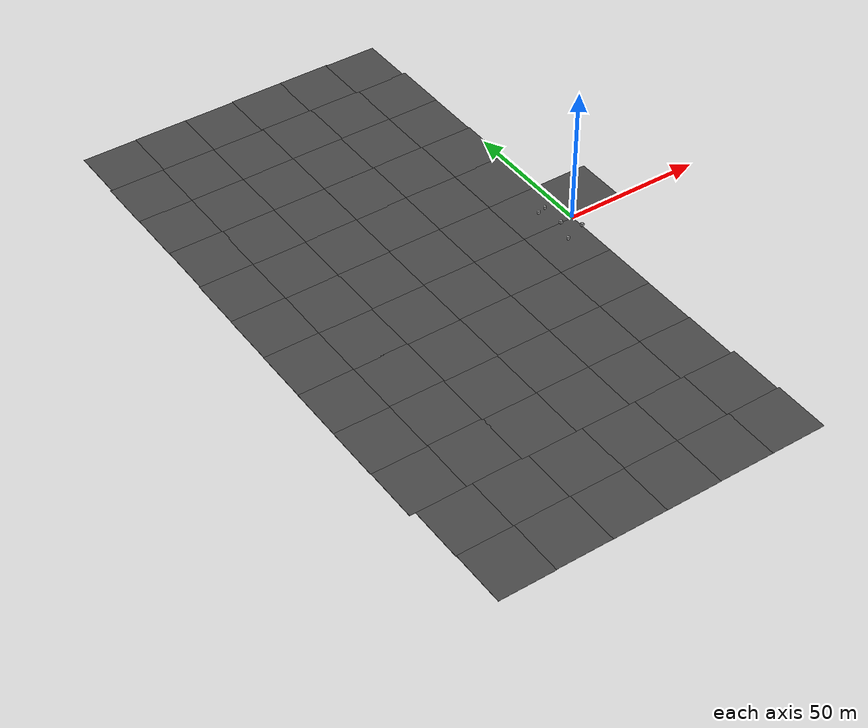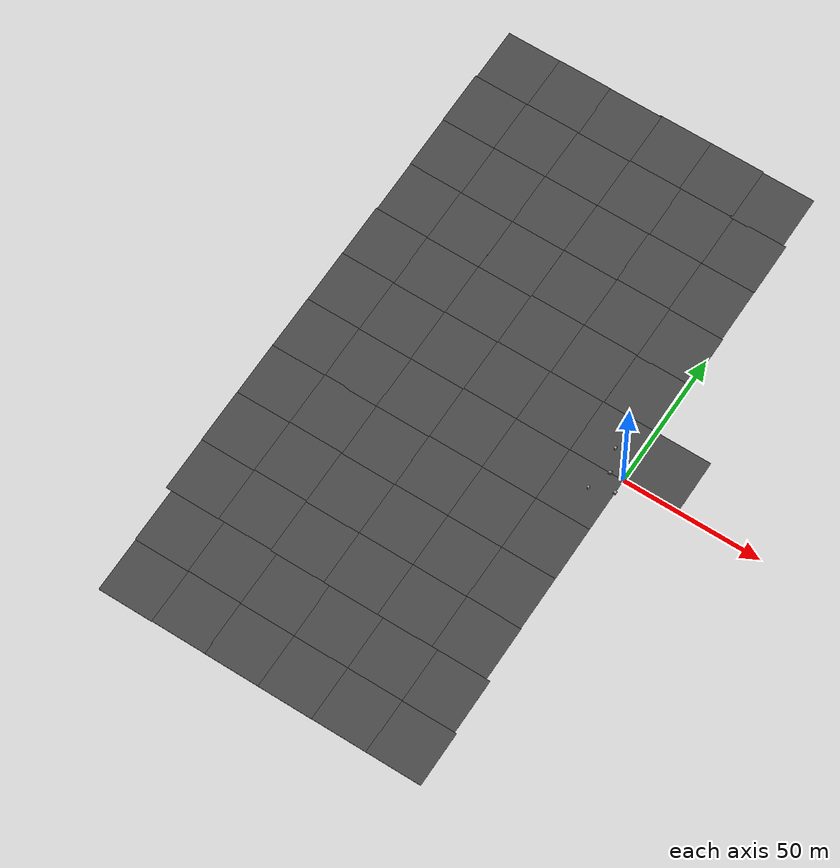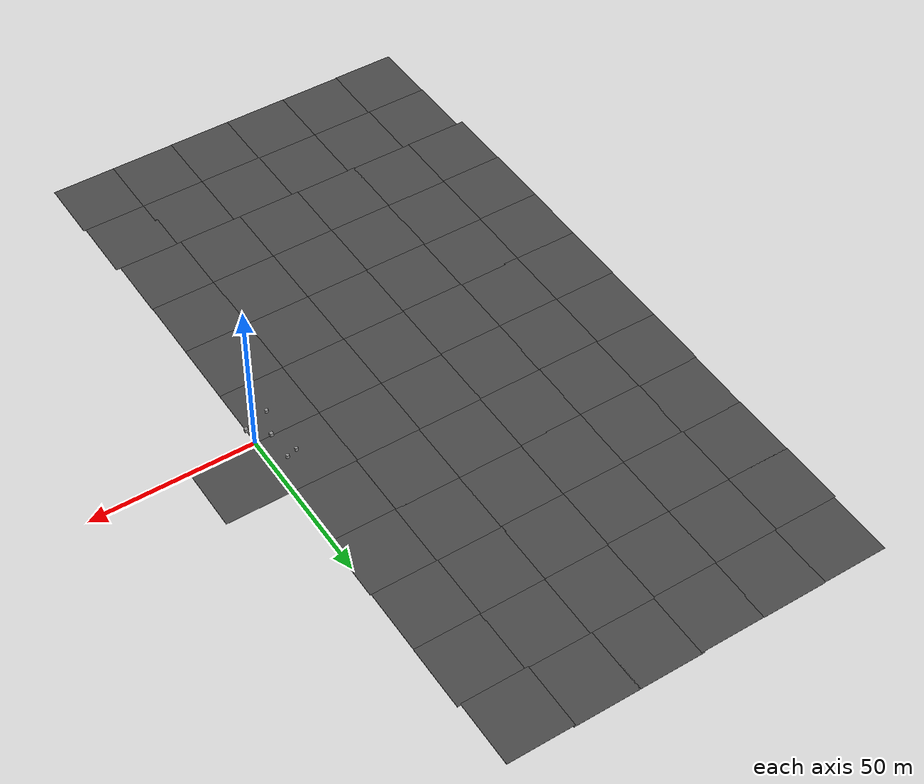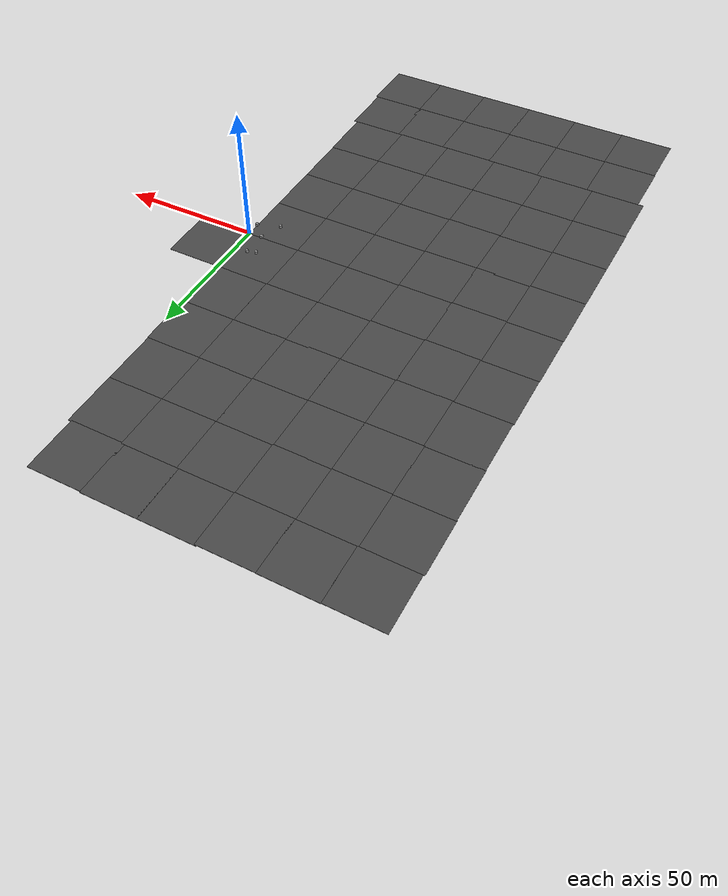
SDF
<sdf version="1.6">
 <world name="default">
  <model name="asphalt_plane">
   <static>1</static>
   <link name="link">
    <collision name="collision"><geometry><box><size>20 20 0.1</size></box></geometry></collision>
    <visual name="visual">
     <cast_shadows>0</cast_shadows>
     <geometry><box><size>20 20 0.1</size></box></geometry>
     <material>
      <script>
       <uri>model://asphalt_plane/materials/scripts</uri>
       <uri>model://asphalt_plane/materials/textures</uri>
       <name>vrc/asphalt</name>
      </script>
     </material>
    </visual>
    <velocity_decay><linear>0</linear><angular>0</angular></velocity_decay>
   </link>
   <pose>10 10 0 0 -0 0</pose>
  </model>
  <model name="asphalt_plane_1">
   <static>1</static>
   <link name="link">
    <collision name="collision"><geometry><box><size>20 20 0.1</size></box></geometry></collision>
    <visual name="visual">
     <cast_shadows>0</cast_shadows>
     <geometry><box><size>20 20 0.1</size></box></geometry>
     <material>
      <script>
       <uri>model://asphalt_plane/materials/scripts</uri>
       <uri>model://asphalt_plane/materials/textures</uri>
       <name>vrc/asphalt</name>
      </script>
     </material>
    </visual>
    <velocity_decay><linear>0</linear><angular>0</angular></velocity_decay>
   </link>
   <pose>-10 10 0 0 -0 0</pose>
  </model>
  <model name="asphalt_plane_2">
   <static>1</static>
   <link name="link">
    <collision name="collision"><geometry><box><size>20 20 0.1</size></box></geometry></collision>
    <visual name="visual">
     <cast_shadows>0</cast_shadows>
     <geometry><box><size>20 20 0.1</size></box></geometry>
     <material>
      <script>
       <uri>model://asphalt_plane/materials/scripts</uri>
       <uri>model://asphalt_plane/materials/textures</uri>
       <name>vrc/asphalt</name>
      </script>
     </material>
    </visual>
    <velocity_decay><linear>0</linear><angular>0</angular></velocity_decay>
   </link>
   <pose>-10 -10 0 0 -0 0</pose>
  </model>
  <model name="asphalt_plane_3">
   <static>1</static>
   <link name="link">
    <collision name="collision"><geometry><box><size>20 20 0.1</size></box></geometry></collision>
    <visual name="visual">
     <cast_shadows>0</cast_shadows>
     <geometry><box><size>20 20 0.1</size></box></geometry>
     <material>
      <script>
       <uri>model://asphalt_plane/materials/scripts</uri>
       <uri>model://asphalt_plane/materials/textures</uri>
       <name>vrc/asphalt</name>
      </script>
     </material>
    </visual>
    <velocity_decay><linear>0</linear><angular>0</angular></velocity_decay>
   </link>
   <pose>-10 -30 0 0 -0 0</pose>
  </model>
  <model name="asphalt_plane_8">
   <static>1</static>
   <link name="link">
    <collision name="collision"><geometry><box><size>20 20 0.1</size></box></geometry></collision>
    <visual name="visual">
     <cast_shadows>0</cast_shadows>
     <geometry><box><size>20 20 0.1</size></box></geometry>
     <material>
      <script>
       <uri>model://asphalt_plane/materials/scripts</uri>
       <uri>model://asphalt_plane/materials/textures</uri>
       <name>vrc/asphalt</name>
      </script>
     </material>
    </visual>
   </link>
   <pose>-10.0262 -49.9694 0 0 -0 0</pose>
  </model>
  <model name="asphalt_plane_28">
   <static>1</static>
   <link name="link">
    <collision name="collision"><geometry><box><size>20 20 0.1</size></box></geometry></collision>
    <visual name="visual">
     <cast_shadows>0</cast_shadows>
     <geometry><box><size>20 20 0.1</size></box></geometry>
     <material>
      <script>
       <uri>model://asphalt_plane/materials/scripts</uri>
       <uri>model://asphalt_plane/materials/textures</uri>
       <name>vrc/asphalt</name>
      </script>
     </material>
    </visual>
   </link>
   <pose>-9.65035 29.8845 0 0 -0 0</pose>
  </model>
  <model name="asphalt_plane_29">
   <static>1</static>
   <link name="link">
    <collision name="collision"><geometry><box><size>20 20 0.1</size></box></geometry></collision>
    <visual name="visual">
     <cast_shadows>0</cast_shadows>
     <geometry><box><size>20 20 0.1</size></box></geometry>
     <material>
      <script>
       <uri>model://asphalt_plane/materials/scripts</uri>
       <uri>model://asphalt_plane/materials/textures</uri>
       <name>vrc/asphalt</name>
      </script>
     </material>
    </visual>
   </link>
   <pose>-29.6635 29.8636 0 0 -0 0</pose>
  </model>
  <model name="asphalt_plane_30">
   <static>1</static>
   <link name="link">
    <collision name="collision"><geometry><box><size>20 20 0.1</size></box></geometry></collision>
    <visual name="visual">
     <cast_shadows>0</cast_shadows>
     <geometry><box><size>20 20 0.1</size></box></geometry>
     <material>
      <script>
       <uri>model://asphalt_plane/materials/scripts</uri>
       <uri>model://asphalt_plane/materials/textures</uri>
       <name>vrc/asphalt</name>
      </script>
     </material>
    </visual>
   </link>
   <pose>-29.8719 9.89328 0 0 -0 0</pose>
  </model>
  <model name="asphalt_plane_31">
   <static>1</static>
   <link name="link">
    <collision name="collision"><geometry><box><size>20 20 0.1</size></box></geometry></collision>
    <visual name="visual">
     <cast_shadows>0</cast_shadows>
     <geometry><box><size>20 20 0.1</size></box></geometry>
     <material>
      <script>
       <uri>model://asphalt_plane/materials/scripts</uri>
       <uri>model://asphalt_plane/materials/textures</uri>
       <name>vrc/asphalt</name>
      </script>
     </material>
    </visual>
   </link>
   <pose>-29.9029 -10.0926 0 0 -0 0</pose>
  </model>
  <model name="asphalt_plane_32">
   <static>1</static>
   <link name="link">
    <collision name="collision"><geometry><box><size>20 20 0.1</size></box></geometry></collision>
    <visual name="visual">
     <cast_shadows>0</cast_shadows>
     <geometry><box><size>20 20 0.1</size></box></geometry>
     <material>
      <script>
       <uri>model://asphalt_plane/materials/scripts</uri>
       <uri>model://asphalt_plane/materials/textures</uri>
       <name>vrc/asphalt</name>
      </script>
     </material>
    </visual>
   </link>
   <pose>-29.8516 -30.0257 0 0 -0 0</pose>
  </model>
  <model name="asphalt_plane_33">
   <static>1</static>
   <link name="link">
    <collision name="collision"><geometry><box><size>20 20 0.1</size></box></geometry></collision>
    <visual name="visual">
     <cast_shadows>0</cast_shadows>
     <geometry><box><size>20 20 0.1</size></box></geometry>
     <material>
      <script>
       <uri>model://asphalt_plane/materials/scripts</uri>
       <uri>model://asphalt_plane/materials/textures</uri>
       <name>vrc/asphalt</name>
      </script>
     </material>
    </visual>
   </link>
   <pose>-29.8339 -50.017 0 0 -0 0</pose>
  </model>
  <model name="asphalt_plane_34">
   <static>1</static>
   <link name="link">
    <collision name="collision"><geometry><box><size>20 20 0.1</size></box></geometry></collision>
    <visual name="visual">
     <cast_shadows>0</cast_shadows>
     <geometry><box><size>20 20 0.1</size></box></geometry>
     <material>
      <script>
       <uri>model://asphalt_plane/materials/scripts</uri>
       <uri>model://asphalt_plane/materials/textures</uri>
       <name>vrc/asphalt</name>
      </script>
     </material>
    </visual>
   </link>
   <pose>-49.8045 -50.0177 0 0 -0 0</pose>
  </model>
  <model name="asphalt_plane_35">
   <static>1</static>
   <link name="link">
    <collision name="collision"><geometry><box><size>20 20 0.1</size></box></geometry></collision>
    <visual name="visual">
     <cast_shadows>0</cast_shadows>
     <geometry><box><size>20 20 0.1</size></box></geometry>
     <material>
      <script>
       <uri>model://asphalt_plane/materials/scripts</uri>
       <uri>model://asphalt_plane/materials/textures</uri>
       <name>vrc/asphalt</name>
      </script>
     </material>
    </visual>
   </link>
   <pose>-49.7739 -30.0396 0 0 -0 0</pose>
  </model>
  <model name="asphalt_plane_36">
   <static>1</static>
   <link name="link">
    <collision name="collision"><geometry><box><size>20 20 0.1</size></box></geometry></collision>
    <visual name="visual">
     <cast_shadows>0</cast_shadows>
     <geometry><box><size>20 20 0.1</size></box></geometry>
     <material>
      <script>
       <uri>model://asphalt_plane/materials/scripts</uri>
       <uri>model://asphalt_plane/materials/textures</uri>
       <name>vrc/asphalt</name>
      </script>
     </material>
    </visual>
   </link>
   <pose>-49.7315 -10.0641 0 0 -0 0</pose>
  </model>
  <model name="asphalt_plane_37">
   <static>1</static>
   <link name="link">
    <collision name="collision"><geometry><box><size>20 20 0.1</size></box></geometry></collision>
    <visual name="visual">
     <cast_shadows>0</cast_shadows>
     <geometry><box><size>20 20 0.1</size></box></geometry>
     <material>
      <script>
       <uri>model://asphalt_plane/materials/scripts</uri>
       <uri>model://asphalt_plane/materials/textures</uri>
       <name>vrc/asphalt</name>
      </script>
     </material>
    </visual>
   </link>
   <pose>-49.8526 9.81961 0 0 -0 0</pose>
  </model>
  <model name="asphalt_plane_38">
   <static>1</static>
   <link name="link">
    <collision name="collision"><geometry><box><size>20 20 0.1</size></box></geometry></collision>
    <visual name="visual">
     <cast_shadows>0</cast_shadows>
     <geometry><box><size>20 20 0.1</size></box></geometry>
     <material>
      <script>
       <uri>model://asphalt_plane/materials/scripts</uri>
       <uri>model://asphalt_plane/materials/textures</uri>
       <name>vrc/asphalt</name>
      </script>
     </material>
    </visual>
   </link>
   <pose>-49.5858 29.8157 0 0 -0 0</pose>
  </model>
  <model name="asphalt_plane_39">
   <static>1</static>
   <link name="link">
    <collision name="collision"><geometry><box><size>20 20 0.1</size></box></geometry></collision>
    <visual name="visual">
     <cast_shadows>0</cast_shadows>
     <geometry><box><size>20 20 0.1</size></box></geometry>
     <material>
      <script>
       <uri>model://asphalt_plane/materials/scripts</uri>
       <uri>model://asphalt_plane/materials/textures</uri>
       <name>vrc/asphalt</name>
      </script>
     </material>
    </visual>
   </link>
   <pose>-69.7888 -50.1931 0 0 -0 0</pose>
  </model>
  <model name="asphalt_plane_40">
   <static>1</static>
   <link name="link">
    <collision name="collision"><geometry><box><size>20 20 0.1</size></box></geometry></collision>
    <visual name="visual">
     <cast_shadows>0</cast_shadows>
     <geometry><box><size>20 20 0.1</size></box></geometry>
     <material>
      <script>
       <uri>model://asphalt_plane/materials/scripts</uri>
       <uri>model://asphalt_plane/materials/textures</uri>
       <name>vrc/asphalt</name>
      </script>
     </material>
    </visual>
   </link>
   <pose>-69.5889 -30.305 0 0 -0 0</pose>
  </model>
  <model name="asphalt_plane_41">
   <static>1</static>
   <link name="link">
    <collision name="collision"><geometry><box><size>20 20 0.1</size></box></geometry></collision>
    <visual name="visual">
     <cast_shadows>0</cast_shadows>
     <geometry><box><size>20 20 0.1</size></box></geometry>
     <material>
      <script>
       <uri>model://asphalt_plane/materials/scripts</uri>
       <uri>model://asphalt_plane/materials/textures</uri>
       <name>vrc/asphalt</name>
      </script>
     </material>
    </visual>
   </link>
   <pose>-69.6926 -10.3768 0 0 -0 0</pose>
  </model>
  <model name="asphalt_plane_42">
   <static>1</static>
   <link name="link">
    <collision name="collision"><geometry><box><size>20 20 0.1</size></box></geometry></collision>
    <visual name="visual">
     <cast_shadows>0</cast_shadows>
     <geometry><box><size>20 20 0.1</size></box></geometry>
     <material>
      <script>
       <uri>model://asphalt_plane/materials/scripts</uri>
       <uri>model://asphalt_plane/materials/textures</uri>
       <name>vrc/asphalt</name>
      </script>
     </material>
    </visual>
   </link>
   <pose>-69.7195 9.5907 0 0 -0 0</pose>
  </model>
  <model name="asphalt_plane_43">
   <static>1</static>
   <link name="link">
    <collision name="collision"><geometry><box><size>20 20 0.1</size></box></geometry></collision>
    <visual name="visual">
     <cast_shadows>0</cast_shadows>
     <geometry><box><size>20 20 0.1</size></box></geometry>
     <material>
      <script>
       <uri>model://asphalt_plane/materials/scripts</uri>
       <uri>model://asphalt_plane/materials/textures</uri>
       <name>vrc/asphalt</name>
      </script>
     </material>
    </visual>
   </link>
   <pose>-69.5806 29.5148 0 0 -0 0</pose>
  </model>
  <model name="asphalt_plane_44">
   <static>1</static>
   <link name="link">
    <collision name="collision"><geometry><box><size>20 20 0.1</size></box></geometry></collision>
    <visual name="visual">
     <cast_shadows>0</cast_shadows>
     <geometry><box><size>20 20 0.1</size></box></geometry>
     <material>
      <script>
       <uri>model://asphalt_plane/materials/scripts</uri>
       <uri>model://asphalt_plane/materials/textures</uri>
       <name>vrc/asphalt</name>
      </script>
     </material>
    </visual>
   </link>
   <pose>-69.4546 49.2496 0 0 -0 0</pose>
  </model>
  <model name="asphalt_plane_45">
   <static>1</static>
   <link name="link">
    <collision name="collision"><geometry><box><size>20 20 0.1</size></box></geometry></collision>
    <visual name="visual">
     <cast_shadows>0</cast_shadows>
     <geometry><box><size>20 20 0.1</size></box></geometry>
     <material>
      <script>
       <uri>model://asphalt_plane/materials/scripts</uri>
       <uri>model://asphalt_plane/materials/textures</uri>
       <name>vrc/asphalt</name>
      </script>
     </material>
    </visual>
   </link>
   <pose>-49.4459 49.3852 0 0 -0 0</pose>
  </model>
  <model name="asphalt_plane_46">
   <static>1</static>
   <link name="link">
    <collision name="collision"><geometry><box><size>20 20 0.1</size></box></geometry></collision>
    <visual name="visual">
     <cast_shadows>0</cast_shadows>
     <geometry><box><size>20 20 0.1</size></box></geometry>
     <material>
      <script>
       <uri>model://asphalt_plane/materials/scripts</uri>
       <uri>model://asphalt_plane/materials/textures</uri>
       <name>vrc/asphalt</name>
      </script>
     </material>
    </visual>
   </link>
   <pose>-29.5435 49.6651 0 0 -0 0</pose>
  </model>
  <model name="asphalt_plane_47">
   <static>1</static>
   <link name="link">
    <collision name="collision"><geometry><box><size>20 20 0.1</size></box></geometry></collision>
    <visual name="visual">
     <cast_shadows>0</cast_shadows>
     <geometry><box><size>20 20 0.1</size></box></geometry>
     <material>
      <script>
       <uri>model://asphalt_plane/materials/scripts</uri>
       <uri>model://asphalt_plane/materials/textures</uri>
       <name>vrc/asphalt</name>
      </script>
     </material>
    </visual>
   </link>
   <pose>-9.54993 49.5955 0 0 -0 0</pose>
  </model>
  <model name="asphalt_plane_58">
   <static>1</static>
   <link name="link">
    <collision name="collision"><geometry><box><size>20 20 0.1</size></box></geometry></collision>
    <visual name="visual">
     <cast_shadows>0</cast_shadows>
     <geometry><box><size>20 20 0.1</size></box></geometry>
     <material>
      <script>
       <uri>model://asphalt_plane/materials/scripts</uri>
       <uri>model://asphalt_plane/materials/textures</uri>
       <name>vrc/asphalt</name>
      </script>
     </material>
    </visual>
   </link>
   <pose>-9.86457 69.4864 0 0 -0 0</pose>
  </model>
  <model name="asphalt_plane_59">
   <static>1</static>
   <link name="link">
    <collision name="collision"><geometry><box><size>20 20 0.1</size></box></geometry></collision>
    <visual name="visual">
     <cast_shadows>0</cast_shadows>
     <geometry><box><size>20 20 0.1</size></box></geometry>
     <material>
      <script>
       <uri>model://asphalt_plane/materials/scripts</uri>
       <uri>model://asphalt_plane/materials/textures</uri>
       <name>vrc/asphalt</name>
      </script>
     </material>
    </visual>
   </link>
   <pose>-29.8012 69.5131 0 0 -0 0</pose>
  </model>
  <model name="asphalt_plane_60">
   <static>1</static>
   <link name="link">
    <collision name="collision"><geometry><box><size>20 20 0.1</size></box></geometry></collision>
    <visual name="visual">
     <cast_shadows>0</cast_shadows>
     <geometry><box><size>20 20 0.1</size></box></geometry>
     <material>
      <script>
       <uri>model://asphalt_plane/materials/scripts</uri>
       <uri>model://asphalt_plane/materials/textures</uri>
       <name>vrc/asphalt</name>
      </script>
     </material>
    </visual>
   </link>
   <pose>-49.5215 69.3867 0 0 -0 0</pose>
  </model>
  <model name="asphalt_plane_61">
   <static>1</static>
   <link name="link">
    <collision name="collision"><geometry><box><size>20 20 0.1</size></box></geometry></collision>
    <visual name="visual">
     <cast_shadows>0</cast_shadows>
     <geometry><box><size>20 20 0.1</size></box></geometry>
     <material>
      <script>
       <uri>model://asphalt_plane/materials/scripts</uri>
       <uri>model://asphalt_plane/materials/textures</uri>
       <name>vrc/asphalt</name>
      </script>
     </material>
    </visual>
   </link>
   <pose>-69.39 69.2244 0 0 -0 0</pose>
  </model>
  <model name="asphalt_plane_67">
   <static>1</static>
   <link name="link">
    <collision name="collision"><geometry><box><size>20 20 0.1</size></box></geometry></collision>
    <visual name="visual">
     <cast_shadows>0</cast_shadows>
     <geometry><box><size>20 20 0.1</size></box></geometry>
     <material>
      <script>
       <uri>model://asphalt_plane/materials/scripts</uri>
       <uri>model://asphalt_plane/materials/textures</uri>
       <name>vrc/asphalt</name>
      </script>
     </material>
    </visual>
   </link>
   <pose>-9.8692 -69.8203 0 0 -0 0</pose>
  </model>
  <model name="asphalt_plane_68">
   <static>1</static>
   <link name="link">
    <collision name="collision"><geometry><box><size>20 20 0.1</size></box></geometry></collision>
    <visual name="visual">
     <cast_shadows>0</cast_shadows>
     <geometry><box><size>20 20 0.1</size></box></geometry>
     <material>
      <script>
       <uri>model://asphalt_plane/materials/scripts</uri>
       <uri>model://asphalt_plane/materials/textures</uri>
       <name>vrc/asphalt</name>
      </script>
     </material>
    </visual>
   </link>
   <pose>-29.8035 -69.9489 0 0 -0 0</pose>
  </model>
  <model name="asphalt_plane_69">
   <static>1</static>
   <link name="link">
    <collision name="collision"><geometry><box><size>20 20 0.1</size></box></geometry></collision>
    <visual name="visual">
     <cast_shadows>0</cast_shadows>
     <geometry><box><size>20 20 0.1</size></box></geometry>
     <material>
      <script>
       <uri>model://asphalt_plane/materials/scripts</uri>
       <uri>model://asphalt_plane/materials/textures</uri>
       <name>vrc/asphalt</name>
      </script>
     </material>
    </visual>
   </link>
   <pose>-49.75 -69.9837 0 0 -0 0</pose>
  </model>
  <model name="asphalt_plane_70">
   <static>1</static>
   <link name="link">
    <collision name="collision"><geometry><box><size>20 20 0.1</size></box></geometry></collision>
    <visual name="visual">
     <cast_shadows>0</cast_shadows>
     <geometry><box><size>20 20 0.1</size></box></geometry>
     <material>
      <script>
       <uri>model://asphalt_plane/materials/scripts</uri>
       <uri>model://asphalt_plane/materials/textures</uri>
       <name>vrc/asphalt</name>
      </script>
     </material>
    </visual>
   </link>
   <pose>-69.6983 -70.0528 0 0 -0 0</pose>
  </model>
  <model name="asphalt_plane_76">
   <static>1</static>
   <link name="link">
    <collision name="collision"><geometry><box><size>20 20 0.1</size></box></geometry></collision>
    <visual name="visual">
     <cast_shadows>0</cast_shadows>
     <geometry><box><size>20 20 0.1</size></box></geometry>
     <material>
      <script>
       <uri>model://asphalt_plane/materials/scripts</uri>
       <uri>model://asphalt_plane/materials/textures</uri>
       <name>vrc/asphalt</name>
      </script>
     </material>
    </visual>
   </link>
   <pose>-8.53391 -89.7003 0 0 -0 0</pose>
  </model>
  <model name="asphalt_plane_77">
   <static>1</static>
   <link name="link">
    <collision name="collision"><geometry><box><size>20 20 0.1</size></box></geometry></collision>
    <visual name="visual">
     <cast_shadows>0</cast_shadows>
     <geometry><box><size>20 20 0.1</size></box></geometry>
     <material>
      <script>
       <uri>model://asphalt_plane/materials/scripts</uri>
       <uri>model://asphalt_plane/materials/textures</uri>
       <name>vrc/asphalt</name>
      </script>
     </material>
    </visual>
   </link>
   <pose>-27.6998 -89.7486 0 0 -0 0</pose>
  </model>
  <model name="asphalt_plane_78">
   <static>1</static>
   <link name="link">
    <collision name="collision"><geometry><box><size>20 20 0.1</size></box></geometry></collision>
    <visual name="visual">
     <cast_shadows>0</cast_shadows>
     <geometry><box><size>20 20 0.1</size></box></geometry>
     <material>
      <script>
       <uri>model://asphalt_plane/materials/scripts</uri>
       <uri>model://asphalt_plane/materials/textures</uri>
       <name>vrc/asphalt</name>
      </script>
     </material>
    </visual>
   </link>
   <pose>-47.6509 -89.8741 0 0 -0 0</pose>
  </model>
  <model name="asphalt_plane_79">
   <static>1</static>
   <link name="link">
    <collision name="collision"><geometry><box><size>20 20 0.1</size></box></geometry></collision>
    <visual name="visual">
     <cast_shadows>0</cast_shadows>
     <geometry><box><size>20 20 0.1</size></box></geometry>
     <material>
      <script>
       <uri>model://asphalt_plane/materials/scripts</uri>
       <uri>model://asphalt_plane/materials/textures</uri>
       <name>vrc/asphalt</name>
      </script>
     </material>
    </visual>
   </link>
   <pose>-67.4324 -89.8653 0 0 -0 0</pose>
  </model>
  <model name="asphalt_plane_80">
   <static>1</static>
   <link name="link">
    <collision name="collision"><geometry><box><size>20 20 0.1</size></box></geometry></collision>
    <visual name="visual">
     <cast_shadows>0</cast_shadows>
     <geometry><box><size>20 20 0.1</size></box></geometry>
     <material>
      <script>
       <uri>model://asphalt_plane/materials/scripts</uri>
       <uri>model://asphalt_plane/materials/textures</uri>
       <name>vrc/asphalt</name>
      </script>
     </material>
    </visual>
   </link>
   <pose>-67.4035 -109.714 0 0 -0 0</pose>
  </model>
  <model name="asphalt_plane_81">
   <static>1</static>
   <link name="link">
    <collision name="collision"><geometry><box><size>20 20 0.1</size></box></geometry></collision>
    <visual name="visual">
     <cast_shadows>0</cast_shadows>
     <geometry><box><size>20 20 0.1</size></box></geometry>
     <material>
      <script>
       <uri>model://asphalt_plane/materials/scripts</uri>
       <uri>model://asphalt_plane/materials/textures</uri>
       <name>vrc/asphalt</name>
      </script>
     </material>
    </visual>
   </link>
   <pose>-47.6403 -109.725 0 0 -0 0</pose>
  </model>
  <model name="asphalt_plane_82">
   <static>1</static>
   <link name="link">
    <collision name="collision"><geometry><box><size>20 20 0.1</size></box></geometry></collision>
    <visual name="visual">
     <cast_shadows>0</cast_shadows>
     <geometry><box><size>20 20 0.1</size></box></geometry>
     <material>
      <script>
       <uri>model://asphalt_plane/materials/scripts</uri>
       <uri>model://asphalt_plane/materials/textures</uri>
       <name>vrc/asphalt</name>
      </script>
     </material>
    </visual>
   </link>
   <pose>-27.6614 -109.666 0 0 -0 0</pose>
  </model>
  <model name="asphalt_plane_83">
   <static>1</static>
   <link name="link">
    <collision name="collision"><geometry><box><size>20 20 0.1</size></box></geometry></collision>
    <visual name="visual">
     <cast_shadows>0</cast_shadows>
     <geometry><box><size>20 20 0.1</size></box></geometry>
     <material>
      <script>
       <uri>model://asphalt_plane/materials/scripts</uri>
       <uri>model://asphalt_plane/materials/textures</uri>
       <name>vrc/asphalt</name>
      </script>
     </material>
    </visual>
   </link>
   <pose>-7.84605 -109.652 0 0 -0 0</pose>
  </model>
  <model name="asphalt_plane_89">
   <static>1</static>
   <link name="link">
    <collision name="collision"><geometry><box><size>20 20 0.1</size></box></geometry></collision>
    <visual name="visual">
     <cast_shadows>0</cast_shadows>
     <geometry><box><size>20 20 0.1</size></box></geometry>
     <material>
      <script>
       <uri>model://asphalt_plane/materials/scripts</uri>
       <uri>model://asphalt_plane/materials/textures</uri>
       <name>vrc/asphalt</name>
      </script>
     </material>
    </visual>
   </link>
   <pose>-89.1943 69.1242 0 0 -0 0</pose>
  </model>
  <model name="asphalt_plane_90">
   <static>1</static>
   <link name="link">
    <collision name="collision"><geometry><box><size>20 20 0.1</size></box></geometry></collision>
    <visual name="visual">
     <cast_shadows>0</cast_shadows>
     <geometry><box><size>20 20 0.1</size></box></geometry>
     <material>
      <script>
       <uri>model://asphalt_plane/materials/scripts</uri>
       <uri>model://asphalt_plane/materials/textures</uri>
       <name>vrc/asphalt</name>
      </script>
     </material>
    </visual>
   </link>
   <pose>-89.3006 49.1706 0 0 -0 0</pose>
  </model>
  <model name="asphalt_plane_91">
   <static>1</static>
   <link name="link">
    <collision name="collision"><geometry><box><size>20 20 0.1</size></box></geometry></collision>
    <visual name="visual">
     <cast_shadows>0</cast_shadows>
     <geometry><box><size>20 20 0.1</size></box></geometry>
     <material>
      <script>
       <uri>model://asphalt_plane/materials/scripts</uri>
       <uri>model://asphalt_plane/materials/textures</uri>
       <name>vrc/asphalt</name>
      </script>
     </material>
    </visual>
   </link>
   <pose>-89.3544 29.2868 0 0 -0 0</pose>
  </model>
  <model name="asphalt_plane_92">
   <static>1</static>
   <link name="link">
    <collision name="collision"><geometry><box><size>20 20 0.1</size></box></geometry></collision>
    <visual name="visual">
     <cast_shadows>0</cast_shadows>
     <geometry><box><size>20 20 0.1</size></box></geometry>
     <material>
      <script>
       <uri>model://asphalt_plane/materials/scripts</uri>
       <uri>model://asphalt_plane/materials/textures</uri>
       <name>vrc/asphalt</name>
      </script>
     </material>
    </visual>
   </link>
   <pose>-89.3973 9.40344 0 0 -0 0</pose>
  </model>
  <model name="asphalt_plane_93">
   <static>1</static>
   <link name="link">
    <collision name="collision"><geometry><box><size>20 20 0.1</size></box></geometry></collision>
    <visual name="visual">
     <cast_shadows>0</cast_shadows>
     <geometry><box><size>20 20 0.1</size></box></geometry>
     <material>
      <script>
       <uri>model://asphalt_plane/materials/scripts</uri>
       <uri>model://asphalt_plane/materials/textures</uri>
       <name>vrc/asphalt</name>
      </script>
     </material>
    </visual>
   </link>
   <pose>-89.467 -10.4714 0 0 -0 0</pose>
  </model>
  <model name="asphalt_plane_94">
   <static>1</static>
   <link name="link">
    <collision name="collision"><geometry><box><size>20 20 0.1</size></box></geometry></collision>
    <visual name="visual">
     <cast_shadows>0</cast_shadows>
     <geometry><box><size>20 20 0.1</size></box></geometry>
     <material>
      <script>
       <uri>model://asphalt_plane/materials/scripts</uri>
       <uri>model://asphalt_plane/materials/textures</uri>
       <name>vrc/asphalt</name>
      </script>
     </material>
    </visual>
   </link>
   <pose>-89.4992 -29.9838 0 0 -0 0</pose>
  </model>
  <model name="asphalt_plane_95">
   <static>1</static>
   <link name="link">
    <collision name="collision"><geometry><box><size>20 20 0.1</size></box></geometry></collision>
    <visual name="visual">
     <cast_shadows>0</cast_shadows>
     <geometry><box><size>20 20 0.1</size></box></geometry>
     <material>
      <script>
       <uri>model://asphalt_plane/materials/scripts</uri>
       <uri>model://asphalt_plane/materials/textures</uri>
       <name>vrc/asphalt</name>
      </script>
     </material>
    </visual>
   </link>
   <pose>-89.5292 -49.9616 0 0 -0 0</pose>
  </model>
  <model name="asphalt_plane_96">
   <static>1</static>
   <link name="link">
    <collision name="collision"><geometry><box><size>20 20 0.1</size></box></geometry></collision>
    <visual name="visual">
     <cast_shadows>0</cast_shadows>
     <geometry><box><size>20 20 0.1</size></box></geometry>
     <material>
      <script>
       <uri>model://asphalt_plane/materials/scripts</uri>
       <uri>model://asphalt_plane/materials/textures</uri>
       <name>vrc/asphalt</name>
      </script>
     </material>
    </visual>
   </link>
   <pose>-89.4341 -69.8526 0 0 -0 0</pose>
  </model>
  <model name="asphalt_plane_97">
   <static>1</static>
   <link name="link">
    <collision name="collision"><geometry><box><size>20 20 0.1</size></box></geometry></collision>
    <visual name="visual">
     <cast_shadows>0</cast_shadows>
     <geometry><box><size>20 20 0.1</size></box></geometry>
     <material>
      <script>
       <uri>model://asphalt_plane/materials/scripts</uri>
       <uri>model://asphalt_plane/materials/textures</uri>
       <name>vrc/asphalt</name>
      </script>
     </material>
    </visual>
   </link>
   <pose>-87.3626 -89.7427 0 0 -0 0</pose>
  </model>
  <model name="asphalt_plane_98">
   <static>1</static>
   <link name="link">
    <collision name="collision"><geometry><box><size>20 20 0.1</size></box></geometry></collision>
    <visual name="visual">
     <cast_shadows>0</cast_shadows>
     <geometry><box><size>20 20 0.1</size></box></geometry>
     <material>
      <script>
       <uri>model://asphalt_plane/materials/scripts</uri>
       <uri>model://asphalt_plane/materials/textures</uri>
       <name>vrc/asphalt</name>
      </script>
     </material>
    </visual>
   </link>
   <pose>-87.117 -109.668 0 0 -0 0</pose>
  </model>
  <model name="asphalt_plane_109">
   <static>1</static>
   <link name="link">
    <collision name="collision"><geometry><box><size>20 20 0.1</size></box></geometry></collision>
    <visual name="visual">
     <cast_shadows>0</cast_shadows>
     <geometry><box><size>20 20 0.1</size></box></geometry>
     <material>
      <script>
       <uri>model://asphalt_plane/materials/scripts</uri>
       <uri>model://asphalt_plane/materials/textures</uri>
       <name>vrc/asphalt</name>
      </script>
     </material>
    </visual>
   </link>
   <pose>-89.1865 89.0634 0 0 -0 0</pose>
  </model>
  <model name="asphalt_plane_110">
   <static>1</static>
   <link name="link">
    <collision name="collision"><geometry><box><size>20 20 0.1</size></box></geometry></collision>
    <visual name="visual">
     <cast_shadows>0</cast_shadows>
     <geometry><box><size>20 20 0.1</size></box></geometry>
     <material>
      <script>
       <uri>model://asphalt_plane/materials/scripts</uri>
       <uri>model://asphalt_plane/materials/textures</uri>
       <name>vrc/asphalt</name>
      </script>
     </material>
    </visual>
   </link>
   <pose>-69.2544 89.0441 0 0 -0 0</pose>
  </model>
  <model name="asphalt_plane_111">
   <static>1</static>
   <link name="link">
    <collision name="collision"><geometry><box><size>20 20 0.1</size></box></geometry></collision>
    <visual name="visual">
     <cast_shadows>0</cast_shadows>
     <geometry><box><size>20 20 0.1</size></box></geometry>
     <material>
      <script>
       <uri>model://asphalt_plane/materials/scripts</uri>
       <uri>model://asphalt_plane/materials/textures</uri>
       <name>vrc/asphalt</name>
      </script>
     </material>
    </visual>
   </link>
   <pose>-49.376 89.3525 0 0 -0 0</pose>
  </model>
  <model name="asphalt_plane_112">
   <static>1</static>
   <link name="link">
    <collision name="collision"><geometry><box><size>20 20 0.1</size></box></geometry></collision>
    <visual name="visual">
     <cast_shadows>0</cast_shadows>
     <geometry><box><size>20 20 0.1</size></box></geometry>
     <material>
      <script>
       <uri>model://asphalt_plane/materials/scripts</uri>
       <uri>model://asphalt_plane/materials/textures</uri>
       <name>vrc/asphalt</name>
      </script>
     </material>
    </visual>
   </link>
   <pose>-29.5902 89.3575 0 0 -0 0</pose>
  </model>
  <model name="asphalt_plane_113">
   <static>1</static>
   <link name="link">
    <collision name="collision"><geometry><box><size>20 20 0.1</size></box></geometry></collision>
    <visual name="visual">
     <cast_shadows>0</cast_shadows>
     <geometry><box><size>20 20 0.1</size></box></geometry>
     <material>
      <script>
       <uri>model://asphalt_plane/materials/scripts</uri>
       <uri>model://asphalt_plane/materials/textures</uri>
       <name>vrc/asphalt</name>
      </script>
     </material>
    </visual>
   </link>
   <pose>-9.80496 89.401 0 0 -0 0</pose>
  </model>
  <model name="asphalt_plane_120">
   <static>1</static>
   <link name="link">
    <collision name="collision"><geometry><box><size>20 20 0.1</size></box></geometry></collision>
    <visual name="visual">
     <cast_shadows>0</cast_shadows>
     <geometry><box><size>20 20 0.1</size></box></geometry>
     <material>
      <script>
       <uri>model://asphalt_plane/materials/scripts</uri>
       <uri>model://asphalt_plane/materials/textures</uri>
       <name>vrc/asphalt</name>
      </script>
     </material>
    </visual>
   </link>
   <pose>-109.105 88.9997 0 0 -0 0</pose>
  </model>
  <model name="asphalt_plane_121">
   <static>1</static>
   <link name="link">
    <collision name="collision"><geometry><box><size>20 20 0.1</size></box></geometry></collision>
    <visual name="visual">
     <cast_shadows>0</cast_shadows>
     <geometry><box><size>20 20 0.1</size></box></geometry>
     <material>
      <script>
       <uri>model://asphalt_plane/materials/scripts</uri>
       <uri>model://asphalt_plane/materials/textures</uri>
       <name>vrc/asphalt</name>
      </script>
     </material>
    </visual>
   </link>
   <pose>-108.964 69.188 0 0 -0 0</pose>
  </model>
  <model name="asphalt_plane_122">
   <static>1</static>
   <link name="link">
    <collision name="collision"><geometry><box><size>20 20 0.1</size></box></geometry></collision>
    <visual name="visual">
     <cast_shadows>0</cast_shadows>
     <geometry><box><size>20 20 0.1</size></box></geometry>
     <material>
      <script>
       <uri>model://asphalt_plane/materials/scripts</uri>
       <uri>model://asphalt_plane/materials/textures</uri>
       <name>vrc/asphalt</name>
      </script>
     </material>
    </visual>
   </link>
   <pose>-108.83 49.348 0 0 -0 0</pose>
  </model>
  <model name="asphalt_plane_123">
   <static>1</static>
   <link name="link">
    <collision name="collision"><geometry><box><size>20 20 0.1</size></box></geometry></collision>
    <visual name="visual">
     <cast_shadows>0</cast_shadows>
     <geometry><box><size>20 20 0.1</size></box></geometry>
     <material>
      <script>
       <uri>model://asphalt_plane/materials/scripts</uri>
       <uri>model://asphalt_plane/materials/textures</uri>
       <name>vrc/asphalt</name>
      </script>
     </material>
    </visual>
   </link>
   <pose>-109.142 29.5516 0 0 -0 0</pose>
  </model>
  <model name="asphalt_plane_124">
   <static>1</static>
   <link name="link">
    <collision name="collision"><geometry><box><size>20 20 0.1</size></box></geometry></collision>
    <visual name="visual">
     <cast_shadows>0</cast_shadows>
     <geometry><box><size>20 20 0.1</size></box></geometry>
     <material>
      <script>
       <uri>model://asphalt_plane/materials/scripts</uri>
       <uri>model://asphalt_plane/materials/textures</uri>
       <name>vrc/asphalt</name>
      </script>
     </material>
    </visual>
   </link>
   <pose>-109.275 9.60687 0 0 -0 0</pose>
  </model>
  <model name="asphalt_plane_125">
   <static>1</static>
   <link name="link">
    <collision name="collision"><geometry><box><size>20 20 0.1</size></box></geometry></collision>
    <visual name="visual">
     <cast_shadows>0</cast_shadows>
     <geometry><box><size>20 20 0.1</size></box></geometry>
     <material>
      <script>
       <uri>model://asphalt_plane/materials/scripts</uri>
       <uri>model://asphalt_plane/materials/textures</uri>
       <name>vrc/asphalt</name>
      </script>
     </material>
    </visual>
   </link>
   <pose>-109.367 -10.3675 0 0 -0 0</pose>
  </model>
  <model name="asphalt_plane_126">
   <static>1</static>
   <link name="link">
    <collision name="collision"><geometry><box><size>20 20 0.1</size></box></geometry></collision>
    <visual name="visual">
     <cast_shadows>0</cast_shadows>
     <geometry><box><size>20 20 0.1</size></box></geometry>
     <material>
      <script>
       <uri>model://asphalt_plane/materials/scripts</uri>
       <uri>model://asphalt_plane/materials/textures</uri>
       <name>vrc/asphalt</name>
      </script>
     </material>
    </visual>
   </link>
   <pose>-109.432 -30.2626 0 0 -0 0</pose>
  </model>
  <model name="asphalt_plane_127">
   <static>1</static>
   <link name="link">
    <collision name="collision"><geometry><box><size>20 20 0.1</size></box></geometry></collision>
    <visual name="visual">
     <cast_shadows>0</cast_shadows>
     <geometry><box><size>20 20 0.1</size></box></geometry>
     <material>
      <script>
       <uri>model://asphalt_plane/materials/scripts</uri>
       <uri>model://asphalt_plane/materials/textures</uri>
       <name>vrc/asphalt</name>
      </script>
     </material>
    </visual>
   </link>
   <pose>-109.476 -50.1902 0 0 -0 0</pose>
  </model>
  <model name="asphalt_plane_128">
   <static>1</static>
   <link name="link">
    <collision name="collision"><geometry><box><size>20 20 0.1</size></box></geometry></collision>
    <visual name="visual">
     <cast_shadows>0</cast_shadows>
     <geometry><box><size>20 20 0.1</size></box></geometry>
     <material>
      <script>
       <uri>model://asphalt_plane/materials/scripts</uri>
       <uri>model://asphalt_plane/materials/textures</uri>
       <name>vrc/asphalt</name>
      </script>
     </material>
    </visual>
   </link>
   <pose>-109.308 -69.9997 0 0 -0 0</pose>
  </model>
  <model name="asphalt_plane_129">
   <static>1</static>
   <link name="link">
    <collision name="collision"><geometry><box><size>20 20 0.1</size></box></geometry></collision>
    <visual name="visual">
     <cast_shadows>0</cast_shadows>
     <geometry><box><size>20 20 0.1</size></box></geometry>
     <material>
      <script>
       <uri>model://asphalt_plane/materials/scripts</uri>
       <uri>model://asphalt_plane/materials/textures</uri>
       <name>vrc/asphalt</name>
      </script>
     </material>
    </visual>
   </link>
   <pose>-107.255 -89.8535 0 0 -0 0</pose>
  </model>
  <model name="asphalt_plane_130">
   <static>1</static>
   <link name="link">
    <collision name="collision"><geometry><box><size>20 20 0.1</size></box></geometry></collision>
    <visual name="visual">
     <cast_shadows>0</cast_shadows>
     <geometry><box><size>20 20 0.1</size></box></geometry>
     <material>
      <script>
       <uri>model://asphalt_plane/materials/scripts</uri>
       <uri>model://asphalt_plane/materials/textures</uri>
       <name>vrc/asphalt</name>
      </script>
     </material>
    </visual>
   </link>
   <pose>-107.047 -109.817 0 0 -0 0</pose>
  </model>
  <model name="asphalt_plane_131">
   <static>1</static>
   <link name="link">
    <collision name="collision"><geometry><box><size>20 20 0.1</size></box></geometry></collision>
    <visual name="visual">
     <cast_shadows>0</cast_shadows>
     <geometry><box><size>20 20 0.1</size></box></geometry>
     <material>
      <script>
       <uri>model://asphalt_plane/materials/scripts</uri>
       <uri>model://asphalt_plane/materials/textures</uri>
       <name>vrc/asphalt</name>
      </script>
     </material>
    </visual>
   </link>
   <pose>-69.0767 108.95 0 0 -0 0</pose>
  </model>
  <model name="asphalt_plane_132">
   <static>1</static>
   <link name="link">
    <collision name="collision"><geometry><box><size>20 20 0.1</size></box></geometry></collision>
    <visual name="visual">
     <cast_shadows>0</cast_shadows>
     <geometry><box><size>20 20 0.1</size></box></geometry>
     <material>
      <script>
       <uri>model://asphalt_plane/materials/scripts</uri>
       <uri>model://asphalt_plane/materials/textures</uri>
       <name>vrc/asphalt</name>
      </script>
     </material>
    </visual>
   </link>
   <pose>-88.7944 109.04 0 0 -0 0</pose>
  </model>
  <model name="asphalt_plane_133">
   <static>1</static>
   <link name="link">
    <collision name="collision"><geometry><box><size>20 20 0.1</size></box></geometry></collision>
    <visual name="visual">
     <cast_shadows>0</cast_shadows>
     <geometry><box><size>20 20 0.1</size></box></geometry>
     <material>
      <script>
       <uri>model://asphalt_plane/materials/scripts</uri>
       <uri>model://asphalt_plane/materials/textures</uri>
       <name>vrc/asphalt</name>
      </script>
     </material>
    </visual>
   </link>
   <pose>-108.654 108.915 0 0 -0 0</pose>
  </model>
  <model name="asphalt_plane_134">
   <static>1</static>
   <link name="link">
    <collision name="collision"><geometry><box><size>20 20 0.1</size></box></geometry></collision>
    <visual name="visual">
     <cast_shadows>0</cast_shadows>
     <geometry><box><size>20 20 0.1</size></box></geometry>
     <material>
      <script>
       <uri>model://asphalt_plane/materials/scripts</uri>
       <uri>model://asphalt_plane/materials/textures</uri>
       <name>vrc/asphalt</name>
      </script>
     </material>
    </visual>
   </link>
   <pose>-49.908 109.284 0 0 -0 0</pose>
  </model>
  <model name="asphalt_plane_135">
   <static>1</static>
   <link name="link">
    <collision name="collision"><geometry><box><size>20 20 0.1</size></box></geometry></collision>
    <visual name="visual">
     <cast_shadows>0</cast_shadows>
     <geometry><box><size>20 20 0.1</size></box></geometry>
     <material>
      <script>
       <uri>model://asphalt_plane/materials/scripts</uri>
       <uri>model://asphalt_plane/materials/textures</uri>
       <name>vrc/asphalt</name>
      </script>
     </material>
    </visual>
   </link>
   <pose>-30.1769 109.315 0 0 -0 0</pose>
  </model>
  <model name="asphalt_plane_136">
   <static>1</static>
   <link name="link">
    <collision name="collision"><geometry><box><size>20 20 0.1</size></box></geometry></collision>
    <visual name="visual">
     <cast_shadows>0</cast_shadows>
     <geometry><box><size>20 20 0.1</size></box></geometry>
     <material>
      <script>
       <uri>model://asphalt_plane/materials/scripts</uri>
       <uri>model://asphalt_plane/materials/textures</uri>
       <name>vrc/asphalt</name>
      </script>
     </material>
    </visual>
   </link>
   <pose>-10.856 108.984 0 0 -0 0</pose>
  </model>
  <model name="unit_cylinder_0_1">
   <pose>-8.02804 8.05829 0.550321 -0.000638 -8.2e-05 1.7e-05</pose>
   <link name="link">
    <inertial>
     <mass>1</mass>
     <inertia><ixx>0.145833</ixx><ixy>0</ixy><ixz>0</ixz><iyy>0.145833</iyy><iyz>0</iyz><izz>0.125</izz></inertia>
    </inertial>
    <collision name="collision">
     <geometry><cylinder><radius>0.5</radius><length>1</length></cylinder></geometry>
    </collision>
    <visual name="visual">
     <geometry><cylinder><radius>0.5</radius><length>1</length></cylinder></geometry>
     <material>
      <script><name>Gazebo/Grey</name><uri>file://media/materials/scripts/gazebo.material</uri></script>
     </material>
    </visual>
   </link>
  </model>
  <model name="unit_cylinder_0_2">
   <pose>-8.00791 -8.06655 0.54912 0 -0 0</pose>
   <link name="link">
    <inertial>
     <mass>1</mass>
     <inertia><ixx>0.145833</ixx><ixy>0</ixy><ixz>0</ixz><iyy>0.145833</iyy><iyz>0</iyz><izz>0.125</izz></inertia>
    </inertial>
    <collision name="collision">
     <geometry><cylinder><radius>0.5</radius><length>1</length></cylinder></geometry>
    </collision>
    <visual name="visual">
     <geometry><cylinder><radius>0.5</radius><length>1</length></cylinder></geometry>
     <material>
      <script><name>Gazebo/Grey</name><uri>file://media/materials/scripts/gazebo.material</uri></script>
     </material>
    </visual>
   </link>
  </model>
  <model name="unit_box_0_0">
   <pose>0.082677 4.98335 0.549626 -0.000728 0.00012 -5e-06</pose>
   <link name="link">
    <inertial>
     <mass>1</mass>
     <inertia>
      <ixx>0.166667</ixx>
      <ixy>0</ixy>
      <ixz>0</ixz>
      <iyy>0.166667</iyy>
      <iyz>0</iyz>
      <izz>0.166667</izz>
     </inertia>
    </inertial>
    <collision name="collision"><geometry><box><size>1 1 1</size></box></geometry></collision>
    <visual name="visual">
     <geometry><box><size>1 1 1</size></box></geometry>
     <material>
      <script><name>Gazebo/Grey</name><uri>file://media/materials/scripts/gazebo.material</uri></script>
     </material>
    </visual>
   </link>
  </model>
  <model name="unit_box_0_1">
   <pose>0.00173 -5.11151 0.54912 0 -0 2e-05</pose>
   <link name="link">
    <inertial>
     <mass>1</mass>
     <inertia>
      <ixx>0.166667</ixx>
      <ixy>0</ixy>
      <ixz>0</ixz>
      <iyy>0.166667</iyy>
      <iyz>0</iyz>
      <izz>0.166667</izz>
     </inertia>
    </inertial>
    <collision name="collision"><geometry><box><size>1 1 1</size></box></geometry></collision>
    <visual name="visual">
     <geometry><box><size>1 1 1</size></box></geometry>
     <material>
      <script><name>Gazebo/Grey</name><uri>file://media/materials/scripts/gazebo.material</uri></script>
     </material>
    </visual>
   </link>
  </model>
  <model name="unit_box_0_3">
   <pose>-4.96999 -0.079033 0.54912 0 -0 0</pose>
   <link name="link">
    <inertial>
     <mass>1</mass>
     <inertia>
      <ixx>0.166667</ixx>
      <ixy>0</ixy>
      <ixz>0</ixz>
      <iyy>0.166667</iyy>
      <iyz>0</iyz>
      <izz>0.166667</izz>
     </inertia>
    </inertial>
    <collision name="collision"><geometry><box><size>1 1 1</size></box></geometry></collision>
    <visual name="visual">
     <geometry><box><size>1 1 1</size></box></geometry>
     <material>
      <script><name>Gazebo/Grey</name><uri>file://media/materials/scripts/gazebo.material</uri></script>
     </material>
    </visual>
   </link>
  </model>
  <model name="unit_cylinder_0_5">
   <pose>-4.81093 8.96255 0.54902 0 -0 0</pose>
   <link name="link">
    <inertial>
     <mass>1</mass>
     <inertia><ixx>0.145833</ixx><ixy>0</ixy><ixz>0</ixz><iyy>0.145833</iyy><iyz>0</iyz><izz>0.125</izz></inertia>
    </inertial>
    <collision name="collision">
     <geometry><cylinder><radius>0.5</radius><length>1</length></cylinder></geometry>
    </collision>
    <visual name="visual">
     <geometry><cylinder><radius>0.5</radius><length>1</length></cylinder></geometry>
     <material>
      <script><name>Gazebo/Grey</name><uri>file://media/materials/scripts/gazebo.material</uri></script>
     </material>
    </visual>
   </link>
  </model>
 </world>
</sdf>
